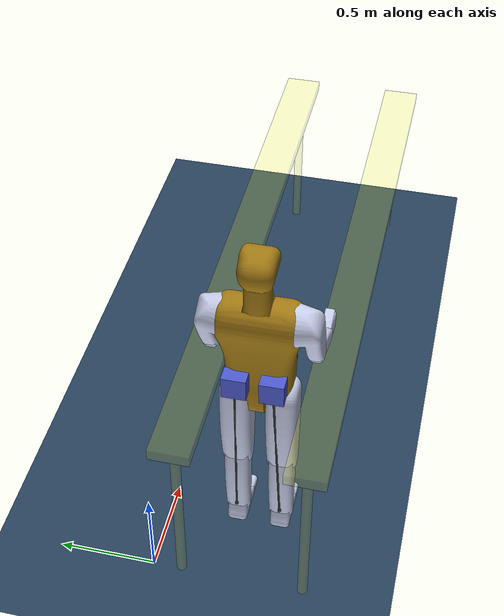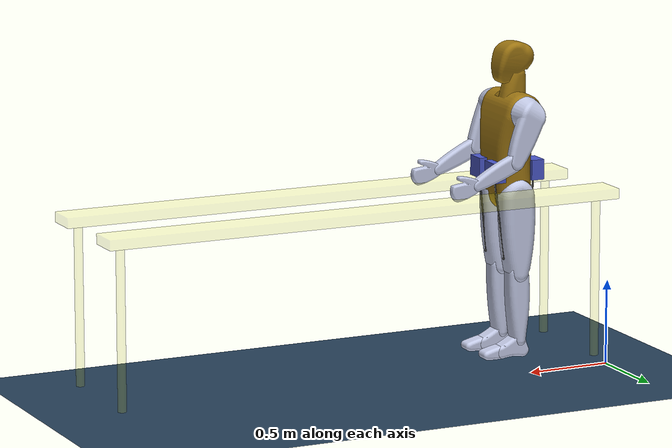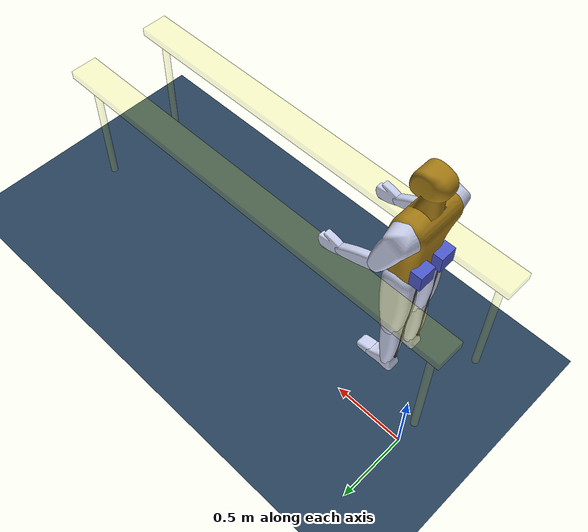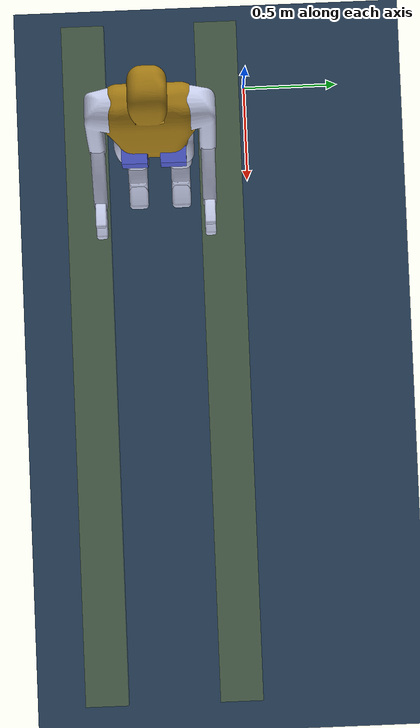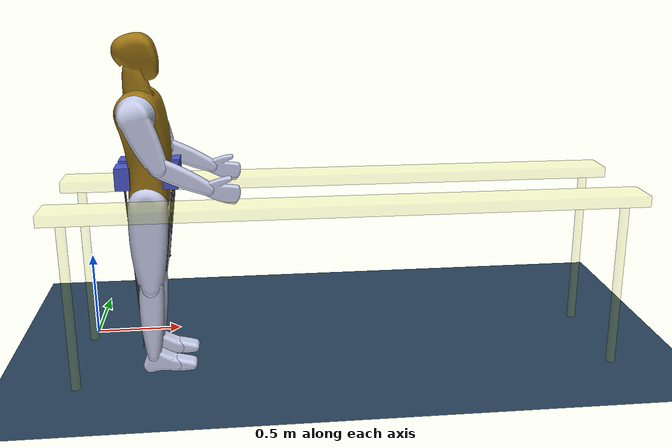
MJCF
<mujoco model="Dummy">
  <option timestep="0.001"/>
  <compiler meshdir="meshes" angle="radian"/>

  <visual>
    <map force="0.1" zfar="30"/>
    <rgba haze="0.15 0.25 0.35 1"/>
    <global offwidth="2560" offheight="1440" elevation="1.5" azimuth="89" fovy="30"/>
  </visual>

  <statistic center="1.5 -0.5 1.1"/>

  <asset>
    <texture type="skybox" builtin="gradient" rgb1=".3 .5 .7" rgb2="0 0 0" width="32" height="512"/>
    <texture name="body" type="cube" builtin="flat" mark="cross" width="128" height="128" rgb1="0.8 0.6 0.4" rgb2="0.8 0.6 0.4" markrgb="1 1 1"/>
    <material name="body" texture="body" texuniform="true" rgba="0.8 0.8 .2 1"/>
    <texture name="grid" type="2d" builtin="checker" width="512" height="512" rgb1=".1 .2 .3" rgb2=".2 .3 .4"/>
    <material name="grid" texture="grid" texrepeat="1 1" texuniform="true" reflectance="0"/>
    <material name="invisibleTendon" rgba="0 0 0 0" specular="0" shininess="0" emission="0"/>
    <mesh name="Tronco" file="Tronco.STL"/>
    <mesh name="Muslo_Izquierdo" file="Muslo_Izquierdo.STL"/>
    <mesh name="Pierna_Izquierda" file="Pierna_Izquierda.STL"/>
    <mesh name="Tobillo_Izquierdo" file="Tobillo_Izquierdo.STL"/>
    <mesh name="Dedos_Izquierdo" file="Dedos_Izquierdo.STL"/>
    <mesh name="Muslo_Derecho" file="Muslo_Derecho.STL"/>
    <mesh name="Pierna_Derecha" file="Pierna_Derecha.STL"/>
    <mesh name="Tobillo_Derecho" file="Tobillo_Derecho.STL"/>
    <mesh name="Dedos_Derecho" file="Dedos_Derecho.STL"/>
    <mesh name="Brazo_Izquierdo" file="Brazo_Izquierdo.STL"/>
    <mesh name="Antebrazo_Izquierdo" file="Antebrazo_Izquierdo.STL"/>
    <mesh name="Mano_Izquierda" file="Mano_Izquierda.STL"/>
    <mesh name="Brazo_Derecho" file="Brazo_Derecho.STL"/>
    <mesh name="Antebrazo_Derecho" file="Antebrazo_Derecho.STL"/>
    <mesh name="Mano_Derecha" file="Mano_Derecha.STL"/>
  </asset>

  <worldbody>
    <geom name="floor" size="0 0 .05" type="plane" material="grid" condim="3"/>
    <light name="top" pos="3 -0.4 2" mode="targetbody"/>
        <!-- ::BARANDAL::-->
    <geom type="cylinder" size="0.0254 0.5 0.2" rgba=".9 .9 .1 0.1" pos="0 -0.15 0.52"/>
    <geom type="cylinder" size="0.0254 0.5 0.2" rgba=".9 .9 .1 0.1" pos="0 -0.78 0.52"/>
    <geom type="cylinder" size="0.0254 0.5 0.2" rgba=".9 .9 .1 0.1" pos="3 -0.15 0.52"/>
    <geom type="cylinder" size="0.0254 0.5 0.2" rgba=".9 .9 .1 0.1" pos="3 -0.78 0.52"/>
    <geom type="box" size="1.6 0.1 0.03" rgba=".9 .9 .1 0.1" pos="1.5 -0.15 1.0"/>
    <geom type="box" size="1.6 0.1 0.03" rgba=".9 .9 .1 0.1" pos="1.5 -0.78 1.0"/>
    <geom type="box" size="1.6 0.1 0.03" rgba=".9 .9 .1 0.1" pos="1.5 -0.15 1.0"/>
    <geom type="box" size="1.6 0.1 0.03" rgba=".9 .9 .1 0.1" pos="1.5 -0.78 1.0"/>
    <!-- ::DUMMY:: -->
    <body name="Torso" pos="2 -0.4 0.9" quat="0.7070927592259219 -0.00327656553926315 0.0032837783973083123 0.7071040846256419">
      <geom type="mesh" mesh="Tronco" material="body"/>
      <site name="Cabeza" type="sphere" size="0.02 0.02 0.02" pos="-0.06 1.62 0.96" rgba=".2 .1 .9 0"/>
      <geom name="MecMusIzq" type="box" pos="0.03 1.45 0.23" size="0.06 0.04 0.06" rgba="0.3 0.35 0.8 1"/>
      <geom name="MecMusDer" type="box" pos="-0.15 1.45 0.23" size="0.06 0.04 0.06" rgba="0.3 0.35 0.8 1"/>
      <geom name="MecPieIzq" type="box" pos="0.03 1.7 0.23" size="0.06 0.04 0.06" rgba="0.3 0.35 0.8 1"/>
      <geom name="MecPieDer" type="box" pos="-0.15 1.7 0.23" size="0.06 0.04 0.06" rgba="0.3 0.35 0.8 1"/>
      <site name="drumMusDer" pos="-0.15 1.435 0.23" size="0.01" rgba="1 0 0 1"/>
      <site name="drumMusIzq" pos="0.035 1.435 0.23" size="0.01" rgba="1 0 0 1"/>
      <site name="drumPieDer" pos="-0.15 1.7 0.23" size="0.01" rgba="1 0 0 1"/>
      <site name="drumPieIzq" pos="0.035 1.7 0.23" size="0.01" rgba="1 0 0 1"/>
      <inertial pos="-0.062758 1.5831 0.46592" quat="0.752889 0.658148 0 0" mass="50.15" diaginertia="1.1284 1.2945 0.52127"/>
      <camera name="back" pos="-3 0 1" xyaxes="0 -1 0 1 0 2" mode="trackcom"/>
      <camera name="side" pos="0 -3 1" xyaxes="1 0 0 0 1 2" mode="trackcom"/>
      <freejoint name="root"/>

      <body name="Muslo_Izquierdo" pos="0 1.5778 0.076154" quat="0.649249 0.760576 0 0">
        <site name="RodilleraIzq" type="sphere" size="0.01 0.01 0.01" pos="0.05 -0.35 0.13" rgba="0.2 0.2 0.2 1"/>
        <inertial pos="0.051392 -0.15837 0.020738" quat="0.752889 0.658148 0 0" mass="8.245" diaginertia="0.30124 0.287876 0.0603824"/>
        <joint name="Cadera_Izquierda" pos="0 0 0" axis="-1 0 0" range="-1.04 1.57"/>
        <geom type="mesh" rgba="0.79216 0.81961 0.93333 1" mesh="Muslo_Izquierdo"/>
        <body name="Pierna_Izquierda" pos="0 -0.45275 0.06363" quat="0.991994 -0.126287 0 0">
          <site name="GrilleteIzq" type="sphere" size="0.01 0.01 0.01" pos="0.05 -0.35 -0.095" rgba=".2 .2 0.2 1"/>
          <inertial pos="0.051392 -0.15304 -0.020291" quat="0.468173 0.529919 -0.529919 0.468173" mass="3.825" diaginertia="0.093646 0.093036 0.013735"/>
          <joint name="Rodilla_Izquierda" pos="0 0 0" axis="1 0 0" range="0 2.5"/>
          <geom type="mesh" rgba="0.79216 0.81961 0.93333 1" mesh="Pierna_Izquierda"/>
          <body name="Tobillo_Izquierdo" pos="0 -0.4033 -0.050079" quat="0.999153 0.0411449 0 0">
            <inertial pos="0.051192 -0.043595 0.035842" quat="0.993721 0.111891 -6.69545e-07 5.94635e-06" mass="0.85" diaginertia="0.0076385 0.00725203 0.00355277"/>
            <joint name="Tarso_Izquierdo" pos="0 0 0" axis="1 0 0" range="-0.7854 1" damping="0.2" frictionloss="0.05"/>
            <geom type="mesh" rgba="0.79216 0.81961 0.93333 1" mesh="Tobillo_Izquierdo"/>
            <body name="Dedos_Izquierdo" pos="-0.0022926 -0.063327 0.1099" quat="0.999978 0.00669045 0 0">
              <inertial pos="0.053484 -0.0082332 0.072078" quat="0.480121 0.519111 0.480134 0.519113" mass="0.34" diaginertia="0.000759584 0.000566096 0.00053591"/>
              <joint name="Metatarso_Izquierdo" pos="0 0 0" axis="1 0 0" range="-0.7854 0.7854" damping="0.2" frictionloss="0.05"/>
              <geom type="mesh" rgba="0.79216 0.81961 0.93333 1" mesh="Dedos_Izquierdo" friction="1.2 0.005 0.0002"/>
            </body>
          </body>
        </body>
      </body>

      <body name="Muslo_Derecho" pos="-0.10066 1.5778 0.076154" quat="0.649249 0.760576 0 0">
        <site name="RodilleraDer" type="sphere" size="0.01 0.01 0.01" pos="-0.08 -0.35 0.13" rgba=".2 .2 .2 1"/>
        <inertial pos="-0.076202 -0.15837 0.020738" quat="0.752889 0.658148 0 0" mass="8.245" diaginertia="0.30124 0.287876 0.0603824"/>
        <joint name="Cadera_Derecha" pos="0 0 0" axis="-1 0 0" range="-1.04 1.57"/>
        <geom type="mesh" rgba="0.79216 0.81961 0.93333 1" mesh="Muslo_Derecho"/>
        <body name="Pierna_Derecha" pos="-0.0127 -0.45275 0.06363" quat="0.991994 -0.126287 0 0">
          <site name="GrilleteDer" type="sphere" size="0.01 0.01 0.01" pos="-0.065 -0.35 -0.095" rgba=".2 .2 .2 1"/>
          <inertial pos="-0.063502 -0.15304 -0.020291" quat="0.468173 0.529919 -0.529919 0.468173" mass="3.825" diaginertia="0.093646 0.093036 0.013735"/>
          <joint name="Rodilla_Derecha" pos="0 0 0" axis="1 0 0" range="0 2.5"/>
          <geom type="mesh" rgba="0.79216 0.81961 0.93333 1" mesh="Pierna_Derecha"/>
          <body name="Tobillo_Derecho" pos="-0.0099725 -0.4033 -0.050079" quat="0.999153 0.0411449 0 0">
            <inertial pos="-0.053729 -0.043595 0.035842" quat="0.993721 0.111891 -6.69545e-07 5.94635e-06" mass="0.85" diaginertia="0.0076385 0.00725203 0.00355277"/>
            <joint name="Tarso_Derecho" pos="0 0 0" axis="1 0 0" range="-0.7854 1" damping="0.2" frictionloss="0.05"/>
            <geom type="mesh" rgba="0.79216 0.81961 0.93333 1" mesh="Tobillo_Derecho"/>
            <body name="Dedos_Derecho" pos="-0.00043303 -0.063327 0.1099" quat="0.999978 0.00669045 0 0">
              <inertial pos="-0.053296 -0.0082332 0.072078" quat="0.480121 0.519111 0.480134 0.519113" mass="0.34" diaginertia="0.000759584 0.000566096 0.00053591"/>
              <joint name="Metatarso_Derecho" pos="0 0 0" axis="1 0 0" range="-0.7854 0.7854" damping="0.2" frictionloss="0.05"/>
              <geom type="mesh" rgba="0.79216 0.81961 0.93333 1" mesh="Dedos_Derecho" friction="1.2 0.005 0.0002"/>
            </body>
          </body>
        </body>
      </body>

      <body name="Brazo_Izquierdo" pos="0.10219 1.6035 0.57234" quat="0.862731 0.505663 0 0">
        <inertial pos="0.067394 -0.057634 -0.0063445" quat="0.662391 0.743345 0.0662559 0.0654705" mass="2.295" diaginertia="0.0488414 0.0442054 0.0142362"/>
        <joint name="Hombro_Izquierdo" pos="0 0 0" axis="-1 0 0" range="-1.57 3.15"/>
        <geom type="mesh" rgba="0.79216 0.81961 0.93333 1" mesh="Brazo_Izquierdo"/>
        <body name="Antebrazo_Izquierdo" pos="0.057149 -0.27726 -0.034554" quat="0.961448 -0.274986 0 0">
          <inertial pos="0.031751 -0.10367 0.008029" quat="0.733197 0.680016 0 0" mass="1.36" diaginertia="0.013718 0.0130467 0.00177201"/>
          <joint name="Codo_Izquierdo" pos="0 0 0" axis="-1 0 0" range="-0.760576 1.7"/>
          <geom type="mesh" rgba="0.79216 0.81961 0.93333 1" mesh="Antebrazo_Izquierdo"/>
          <body name="Mano_Izquierda" pos="0.0023118 -0.27865 0.020413" quat="0.995338 -0.0964498 0 0">
            <inertial pos="0.029539 -0.070308 0.011005" quat="0.707575 0.706639 0 0" mass="0.51" diaginertia="0.003195 0.0024772 0.0010969"/>
            <joint name="Muneca_Izquierda" pos="0 0 0" axis="1 0 0" range="0 0.7854"/>
            <geom type="mesh" rgba="0.79216 0.81961 0.93333 1" mesh="Mano_Izquierda"/>
          </body>
        </body>
      </body>

      <body name="Brazo_Derecho" pos="-0.22781 1.6035 0.57234" quat="-2.22179e-06 -2.92508e-06 0.796328 0.604865">
        <inertial pos="0.067394 -0.057635 -0.0063449" quat="0.662391 0.743345 0.0662566 0.0654697" mass="2.295" diaginertia="0.0488414 0.0442054 0.0142362"/>
        <joint name="Hombro_Derecho" pos="0 0 0" axis="1 0 0" range="-1.57 3.15"/>
        <geom type="mesh" rgba="0.79216 0.81961 0.93333 1" mesh="Brazo_Derecho"/>
        <body name="Antebrazo_Derecho" pos="0.057149 -0.27726 -0.034554" quat="-1.39922e-06 -3.39627e-06 0.924606 0.380925">
          <inertial pos="-0.031751 -0.10367 0.008029" quat="0.733197 0.680016 0 0" mass="1.36" diaginertia="0.013718 0.0130467 0.00177201"/>
          <joint name="Codo_Derecho" pos="0 0 0" axis="-1 0 0" range="-0.760576 1.7"/>
          <geom type="mesh" rgba="0.79216 0.81961 0.93333 1" mesh="Antebrazo_Derecho"/>
          <body name="Mano_Derecha" pos="-0.0023118 -0.27865 0.020413" quat="0.993792 -0.111254 0 0">
            <inertial pos="-0.029539 -0.070308 0.011005" quat="0.707575 0.706639 0 0" mass="0.51" diaginertia="0.003195 0.0024772 0.0010969"/>
            <joint name="Muneca_Derecha" pos="0 0 0" axis="1 0 0" range="0 0.7854"/>
            <geom type="mesh" rgba="0.79216 0.81961 0.93333 1" mesh="Mano_Derecha"/>
          </body>
        </body>
      </body>

    </body>
    <!-- ::RIEL DESLIZABLE::-->
    <body name="Soporte_Deslizable" pos="0.375 -0.45 3">
        <body name="Cuerpo_Deslizante">
            <joint name="Slide_X" type="slide" pos="0 0 0" axis="1 0 0" range="0 3"/>
            <geom name="Bloque_Deslizante" type="box" size="0.05 0.05 0.05" rgba="0.5 0 0 0"/>
            <site name="Desliza" type="sphere" size="0.02 0.02 0.02" pos="0 0 -0.04" rgba=".2 .1 .9 0"/>
        </body>
    </body>

  <light name="spotlight" mode="targetbodycom" target="Torso" diffuse=".8 .8 .8" specular="0.3 0.3 0.3" pos="0 -6 4" cutoff="30"/>
  </worldbody>

  <!-- ::TENDONES:: -->
  <tendon>
    <spatial name="CableGuia" limited="true" range="0 1.1" width="0.005" material="invisibleTendon">
      <site site="Desliza"/>
      <site site="Cabeza"/>
    </spatial>
  </tendon>

  <tendon>
    <spatial name="tendonMusDer" limited="true" range="0 1" width="0.005" damping="100" rgba="0.2 0.2 0.2 1">
      <site site="drumMusDer"/>
      <site site="RodilleraDer"/>
    </spatial>
  </tendon>

  <tendon>
    <spatial name="tendonMusIzq" limited="true" range="0 1" width="0.005" damping="100" rgba="0.2 0.2 0.2 1">
      <site site="drumMusIzq"/>
      <site site="RodilleraIzq"/>
    </spatial>
  </tendon>

  <tendon>
    <spatial name="tendonPieDer" limited="true" range="-1.2 1.2" width="0.005" damping="100" rgba="0.2 0.2 0.2 1">
      <site site="drumPieDer"/>
      <site site="GrilleteDer"/>
    </spatial>
  </tendon>

  <tendon>
    <spatial name="tendonPieIzq" limited="true" range="-1.2 1.2" width="0.005" damping="100" rgba="0.2 0.2 0.2 1">
      <site site="drumPieIzq"/>
      <site site="GrilleteIzq"/>
    </spatial>
  </tendon>

<!-- ::ACTUADORES:: -->

  <actuator>
  <motor
    name="MusloDerechoCable"
    tendon="tendonMusDer"
    ctrllimited="true"
    ctrlrange="-150 50"
    gear="1.0"/>
</actuator>

<actuator>
  <motor
    name="MusloIzquierdoCable"
    tendon="tendonMusIzq"
    ctrllimited="true"
    ctrlrange="-150 50"
    gear="1.0"/>
</actuator>

<actuator>
  <motor
    name="PiernaDerechoCable"
    tendon="tendonPieDer"
    ctrllimited="true"
    ctrlrange="-100 100"
    gear="1.0"/>
</actuator>

<actuator>
  <motor
    name="PiernaIzquierdoCable"
    tendon="tendonPieIzq"
    ctrllimited="true"
    ctrlrange="-100 100"
    gear="1.0"/>
</actuator>

</mujoco>
